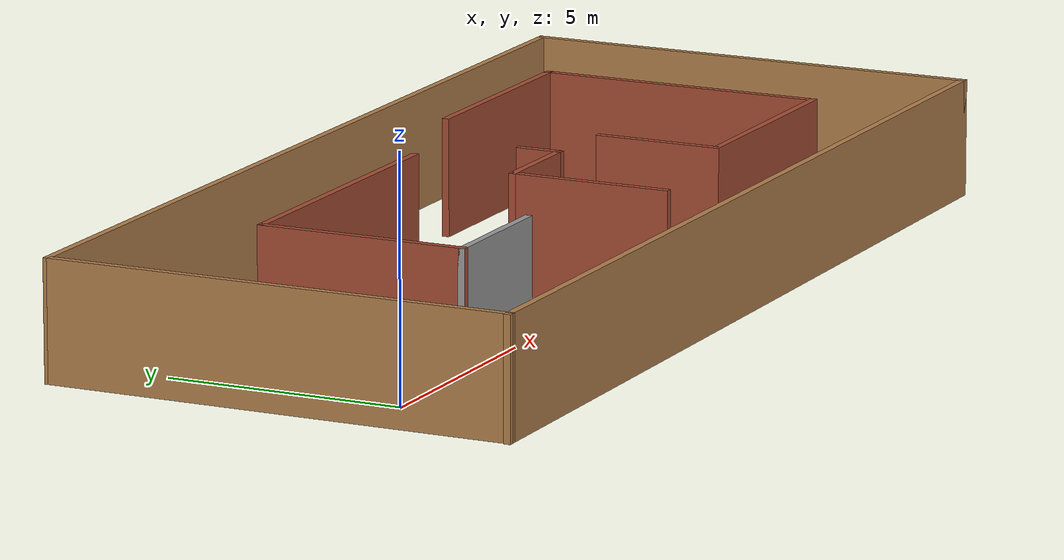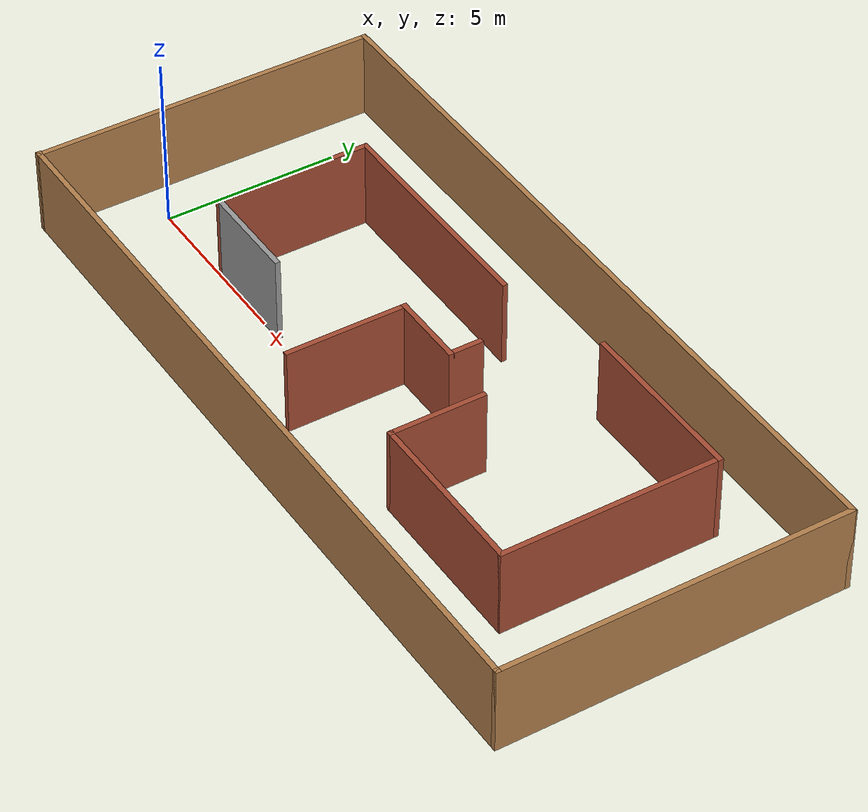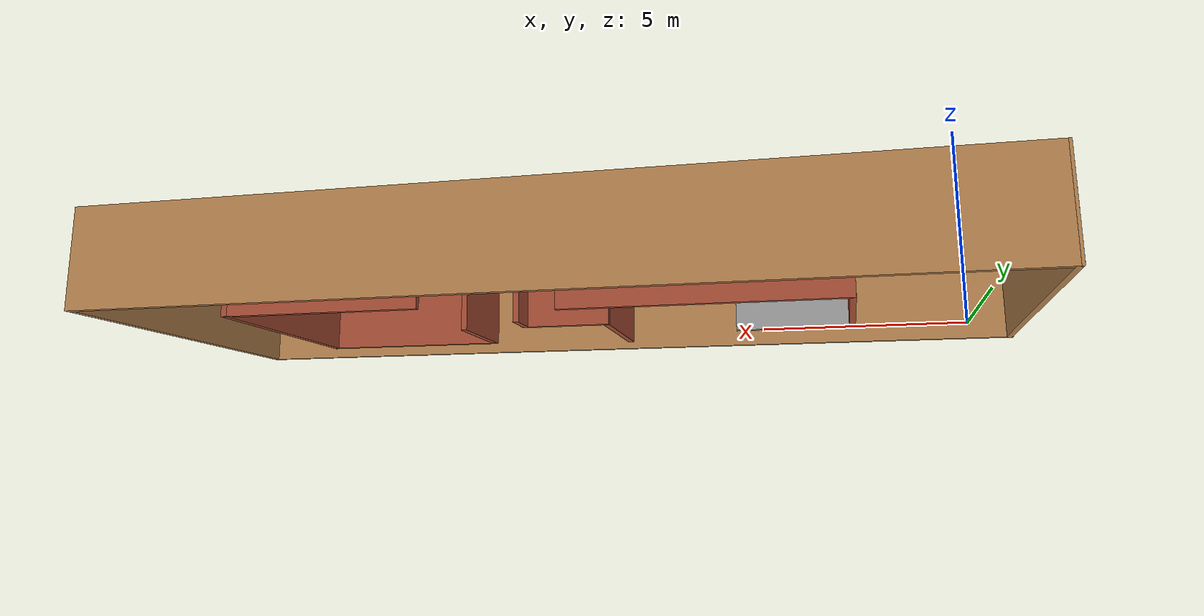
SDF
<?xml version='1.0'?>
<sdf version='1.7'>
  <model name='Room'>
    <pose>9.55982 1.95741 0 0 -0 0</pose>
    <link name='Wall_0'>
      <collision name='Wall_0_Collision'>
        <geometry>
          <box>
            <size>22.0704 0.15 2.5</size>
          </box>
        </geometry>
        <pose>0 0 1.25 0 -0 0</pose>
      </collision>
      <visual name='Wall_0_Visual'>
        <pose>0 0 1.25 0 -0 0</pose>
        <geometry>
          <box>
            <size>22.0704 0.15 2.5</size>
          </box>
        </geometry>
        <material>
          <script>
            <uri>file://media/materials/scripts/gazebo.material</uri>
            <name>Gazebo/Wood</name>
          </script>
          <ambient>1 1 1 1</ambient>
        </material>
        <meta>
          <layer>0</layer>
        </meta>
      </visual>
      <pose>-0 -4.90741 0 0 -0 0</pose>
    </link>
    <link name='Wall_1'>
      <collision name='Wall_1_Collision'>
        <geometry>
          <box>
            <size>9.92964 0.15 2.5</size>
          </box>
        </geometry>
        <pose>0 0 1.25 0 -0 0</pose>
      </collision>
      <visual name='Wall_1_Visual'>
        <pose>0 0 1.25 0 -0 0</pose>
        <geometry>
          <box>
            <size>9.92964 0.15 2.5</size>
          </box>
        </geometry>
        <material>
          <script>
            <uri>file://media/materials/scripts/gazebo.material</uri>
            <name>Gazebo/Wood</name>
          </script>
          <ambient>1 1 1 1</ambient>
        </material>
        <meta>
          <layer>0</layer>
        </meta>
      </visual>
      <pose>10.9602 -0.017589 0 0 -0 1.5708</pose>
    </link>
    <link name='Wall_10'>
      <collision name='Wall_10_Collision'>
        <geometry>
          <box>
            <size>5 0.15 2.5</size>
          </box>
        </geometry>
        <pose>0 0 1.25 0 -0 0</pose>
      </collision>
      <visual name='Wall_10_Visual'>
        <pose>0 0 1.25 0 -0 0</pose>
        <geometry>
          <box>
            <size>5 0.15 2.5</size>
          </box>
        </geometry>
        <material>
          <script>
            <uri>file://media/materials/scripts/gazebo.material</uri>
            <name>Gazebo/Bricks</name>
          </script>
          <ambient>1 1 1 1</ambient>
        </material>
        <meta>
          <layer>0</layer>
        </meta>
      </visual>
      <pose>5.46903 -2.81365 0 0 -0 0</pose>
    </link>
    <link name='Wall_11'>
      <collision name='Wall_11_Collision'>
        <geometry>
          <box>
            <size>6.25 0.15 2.5</size>
          </box>
        </geometry>
        <pose>0 0 1.25 0 -0 0</pose>
      </collision>
      <visual name='Wall_11_Visual'>
        <pose>0 0 1.25 0 -0 0</pose>
        <geometry>
          <box>
            <size>6.25 0.15 2.5</size>
          </box>
        </geometry>
        <material>
          <script>
            <uri>file://media/materials/scripts/gazebo.material</uri>
            <name>Gazebo/Bricks</name>
          </script>
          <ambient>1 1 1 1</ambient>
        </material>
        <meta>
          <layer>0</layer>
        </meta>
      </visual>
      <pose>7.89403 0.236349 0 0 -0 1.5708</pose>
    </link>
    <link name='Wall_12'>
      <collision name='Wall_12_Collision'>
        <geometry>
          <box>
            <size>5 0.15 2.5</size>
          </box>
        </geometry>
        <pose>0 0 1.25 0 -0 0</pose>
      </collision>
      <visual name='Wall_12_Visual'>
        <pose>0 0 1.25 0 -0 0</pose>
        <geometry>
          <box>
            <size>5 0.15 2.5</size>
          </box>
        </geometry>
        <material>
          <script>
            <uri>file://media/materials/scripts/gazebo.material</uri>
            <name>Gazebo/Bricks</name>
          </script>
          <ambient>1 1 1 1</ambient>
        </material>
        <meta>
          <layer>0</layer>
        </meta>
      </visual>
      <pose>5.46903 3.28635 0 0 -0 3.14159</pose>
    </link>
    <link name='Wall_14'>
      <collision name='Wall_14_Collision'>
        <geometry>
          <box>
            <size>3.5 0.15 2.5</size>
          </box>
        </geometry>
        <pose>0 0 1.25 0 -0 0</pose>
      </collision>
      <visual name='Wall_14_Visual'>
        <pose>0 0 1.25 0 -0 0</pose>
        <geometry>
          <box>
            <size>3.5 0.15 2.5</size>
          </box>
        </geometry>
        <material>
          <script>
            <uri>file://media/materials/scripts/gazebo.material</uri>
            <name>Gazebo/Bricks</name>
          </script>
          <ambient>1 1 1 1</ambient>
        </material>
        <meta>
          <layer>0</layer>
        </meta>
      </visual>
      <pose>-0.755272 -1.74794 0 0 -0 -1.5708</pose>
    </link>
    <link name='Wall_16'>
      <collision name='Wall_16_Collision'>
        <geometry>
          <box>
            <size>2.25 0.15 2.5</size>
          </box>
        </geometry>
        <pose>0 0 1.25 0 -0 0</pose>
      </collision>
      <visual name='Wall_16_Visual'>
        <pose>0 0 1.25 0 -0 0</pose>
        <geometry>
          <box>
            <size>2.25 0.15 2.5</size>
          </box>
        </geometry>
        <material>
          <script>
            <uri>file://media/materials/scripts/gazebo.material</uri>
            <name>Gazebo/Bricks</name>
          </script>
          <ambient>1 1 1 1</ambient>
        </material>
        <meta>
          <layer>0</layer>
        </meta>
      </visual>
      <pose>0.294728 -0.072936 0 0 -0 0</pose>
    </link>
    <link name='Wall_17'>
      <collision name='Wall_17_Collision'>
        <geometry>
          <box>
            <size>1 0.15 2.5</size>
          </box>
        </geometry>
        <pose>0 0 1.25 0 -0 0</pose>
      </collision>
      <visual name='Wall_17_Visual'>
        <pose>0 0 1.25 0 -0 0</pose>
        <geometry>
          <box>
            <size>1 0.15 2.5</size>
          </box>
        </geometry>
        <material>
          <script>
            <uri>file://media/materials/scripts/gazebo.material</uri>
            <name>Gazebo/Bricks</name>
          </script>
          <ambient>1 1 1 1</ambient>
        </material>
        <meta>
          <layer>0</layer>
        </meta>
      </visual>
      <pose>1.34473 0.352064 0 0 -0 1.5708</pose>
    </link>
    <link name='Wall_2'>
      <collision name='Wall_2_Collision'>
        <geometry>
          <box>
            <size>22 0.15 2.5</size>
          </box>
        </geometry>
        <pose>0 0 1.25 0 -0 0</pose>
      </collision>
      <visual name='Wall_2_Visual'>
        <pose>0 0 1.25 0 -0 0</pose>
        <geometry>
          <box>
            <size>22 0.15 2.5</size>
          </box>
        </geometry>
        <material>
          <script>
            <uri>file://media/materials/scripts/gazebo.material</uri>
            <name>Gazebo/Wood</name>
          </script>
          <ambient>1 1 1 1</ambient>
        </material>
        <meta>
          <layer>0</layer>
        </meta>
      </visual>
      <pose>0.035179 4.90741 0 0 -0 3.14159</pose>
    </link>
    <link name='Wall_3'>
      <collision name='Wall_3_Collision'>
        <geometry>
          <box>
            <size>9.96488 0.15 2.5</size>
          </box>
        </geometry>
        <pose>0 0 1.25 0 -0 0</pose>
      </collision>
      <visual name='Wall_3_Visual'>
        <pose>0 0 1.25 0 -0 0</pose>
        <geometry>
          <box>
            <size>9.96488 0.15 2.5</size>
          </box>
        </geometry>
        <material>
          <script>
            <uri>file://media/materials/scripts/gazebo.material</uri>
            <name>Gazebo/Wood</name>
          </script>
          <ambient>1 1 1 1</ambient>
        </material>
        <meta>
          <layer>0</layer>
        </meta>
      </visual>
      <pose>-10.9074 -0 0 0 -0 -1.57438</pose>
    </link>
    <link name='Wall_5'>
      <collision name='Wall_5_Collision'>
        <geometry>
          <box>
            <size>3 0.15 2.5</size>
          </box>
        </geometry>
        <pose>0 0 1.25 0 -0 0</pose>
      </collision>
      <visual name='Wall_5_Visual'>
        <pose>0 0 1.25 0 -0 0</pose>
        <geometry>
          <box>
            <size>3 0.15 2.5</size>
          </box>
        </geometry>
        <material>
          <script>
            <uri>file://media/materials/scripts/gazebo.material</uri>
            <name>Gazebo/Grey</name>
          </script>
          <ambient>1 1 1 1</ambient>
        </material>
        <meta>
          <layer>0</layer>
        </meta>
      </visual>
      <pose>-5.34636 -1.90223 0 0 -0 3.14159</pose>
    </link>
    <link name='Wall_6'>
      <collision name='Wall_6_Collision'>
        <geometry>
          <box>
            <size>4.5 0.15 2.5</size>
          </box>
        </geometry>
        <pose>0 0 1.25 0 -0 0</pose>
      </collision>
      <visual name='Wall_6_Visual'>
        <pose>0 0 1.25 0 -0 0</pose>
        <geometry>
          <box>
            <size>4.5 0.15 2.5</size>
          </box>
        </geometry>
        <material>
          <script>
            <uri>file://media/materials/scripts/gazebo.material</uri>
            <name>Gazebo/Bricks</name>
          </script>
          <ambient>1 1 1 1</ambient>
        </material>
        <meta>
          <layer>0</layer>
        </meta>
      </visual>
      <pose>-6.77136 0.272768 0 0 -0 1.5708</pose>
    </link>
    <link name='Wall_7'>
      <collision name='Wall_7_Collision'>
        <geometry>
          <box>
            <size>6.75 0.15 2.5</size>
          </box>
        </geometry>
        <pose>0 0 1.25 0 -0 0</pose>
      </collision>
      <visual name='Wall_7_Visual'>
        <pose>0 0 1.25 0 -0 0</pose>
        <geometry>
          <box>
            <size>6.75 0.15 2.5</size>
          </box>
        </geometry>
        <material>
          <script>
            <uri>file://media/materials/scripts/gazebo.material</uri>
            <name>Gazebo/Bricks</name>
          </script>
          <ambient>1 1 1 1</ambient>
        </material>
        <meta>
          <layer>0</layer>
        </meta>
      </visual>
      <pose>-3.47136 2.44777 0 0 -0 0</pose>
    </link>
    <link name='Wall_9'>
      <collision name='Wall_9_Collision'>
        <geometry>
          <box>
            <size>2.75 0.15 2.5</size>
          </box>
        </geometry>
        <pose>0 0 1.25 0 -0 0</pose>
      </collision>
      <visual name='Wall_9_Visual'>
        <pose>0 0 1.25 0 -0 0</pose>
        <geometry>
          <box>
            <size>2.75 0.15 2.5</size>
          </box>
        </geometry>
        <material>
          <script>
            <uri>file://media/materials/scripts/gazebo.material</uri>
            <name>Gazebo/Bricks</name>
          </script>
          <ambient>1 1 1 1</ambient>
        </material>
        <meta>
          <layer>0</layer>
        </meta>
      </visual>
      <pose>3.04403 -1.51365 0 0 -0 -1.5708</pose>
    </link>
    <static>1</static>
  </model>
</sdf>
